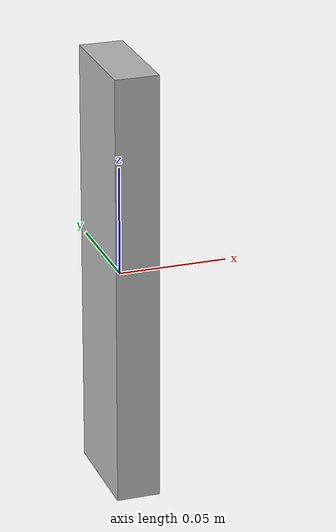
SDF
<?xml version="1.0"?>
<sdf version="1.5">
  <model name="rplidar">
    <link name="link">

      <inertial>
        <pose>0 0 0 0 0 0</pose>
        <mass>0.19</mass>
        <inertia>
          <ixx>4.15e-6</ixx>
          <ixy>0</ixy>
          <ixz>0</ixz>
          <iyy>2.407e-6</iyy>
          <iyz>0</iyz>
          <izz>2.407e-6</izz>
        </inertia>
      </inertial>

      <visual name="visual">
        <geometry>
          <box>
            <size>0.02 0.05 0.2</size>
          </box>
        </geometry>
      </visual>

      <sensor name="laser" type="ray">
        <ray>
          <scan>
            <horizontal>
              <samples>360</samples>
              <resolution>1</resolution>
              <min_angle>-3.14</min_angle>
              <max_angle>3.14</max_angle>
            </horizontal>
          </scan>
          <range>
            <min>0.1</min>
            <max>6</max>
            <resolution>0.05</resolution>
          </range>
          <noise>
            <type>gaussian</type>
            <mean>0.0</mean>
            <stddev>0.01</stddev>
          </noise>
        </ray>
        <plugin name="laser" filename="libRayPlugin.so" />
        <plugin name="gazebo_ros_head_rplidar_controller" filename="libgazebo_ros_laser.so">
          <topicName>laser/scan</topicName>
          <frameName>rplidar_link</frameName>
        </plugin>
        <always_on>1</always_on>
        <update_rate>5.5</update_rate>
        <visualize>true</visualize>
      </sensor>
    </link>
  </model>
</sdf>
